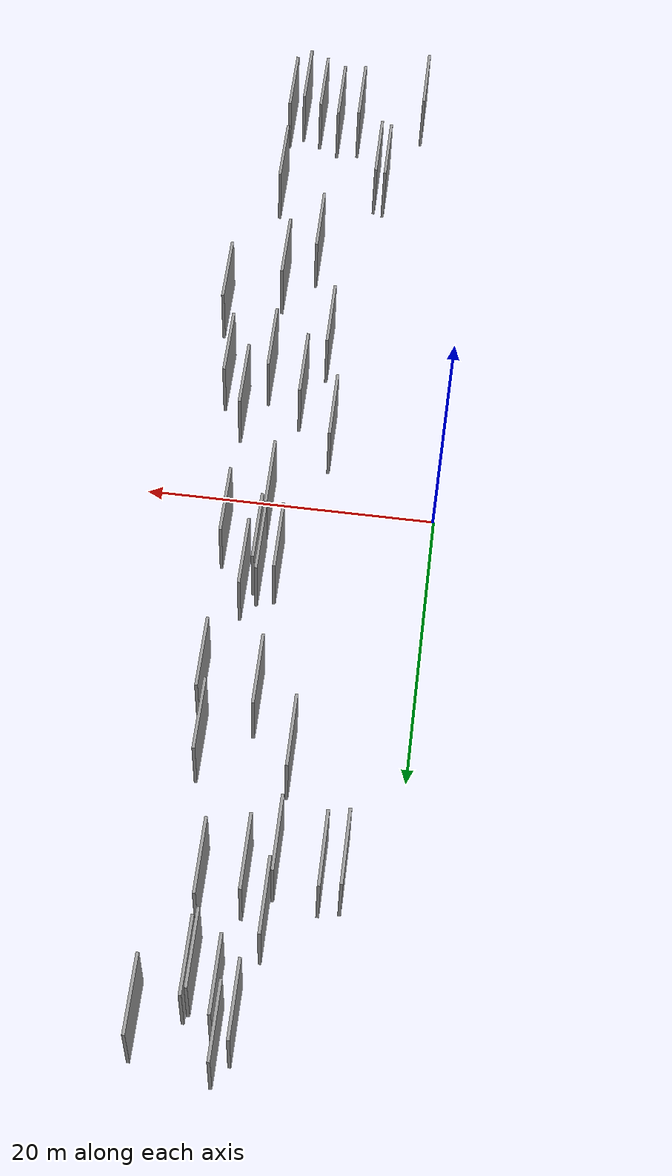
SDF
<sdf version="1.6">
 <world name="default">
  <scene>
   <sky><clouds><speed>12</speed></clouds></sky>
   <ambient>0.4 0.4 0.4 1</ambient>
   <background>0.7 0.7 0.7 1</background>
   <shadows>1</shadows>
  </scene>
  <gravity>0 0 -9.8066</gravity>
  <magnetic_field>6e-06 2.3e-05 -4.2e-05</magnetic_field>
  <physics default="0" name="default_physics" type="ode">
   <ode>
    <solver>
     <type>quick</type>
     <iters>10</iters>
     <sor>1.0</sor>
     <use_dynamic_moi_rescaling>0</use_dynamic_moi_rescaling>
    </solver>
    <constraints>
     <cfm>0</cfm>
     <erp>0.2</erp>
     <contact_max_correcting_vel>100</contact_max_correcting_vel>
     <contact_surface_layer>0.001</contact_surface_layer>
    </constraints>
   </ode>
   <max_step_size>0.004</max_step_size>
   <real_time_factor>1</real_time_factor>
   <real_time_update_rate>250</real_time_update_rate>
  </physics>
  <light name="sun" type="directional">
   <pose>0 0 10 0 0 0</pose>
   <diffuse>0.8 0.8 0.8 1</diffuse>
   <specular>0.2 0.2 0.2 1</specular>
   <attenuation>
    <range>1000</range>
    <constant>0.9</constant>
    <linear>0.01</linear>
    <quadratic>0.001</quadratic>
   </attenuation>
   <direction>-0.5 0.1 -0.9</direction>
  </light>
  <model name="grey_wall_1">
   <static>1</static>
   <pose>10.1466 15.5765 0.0 0.000000 0.000000 1.570796</pose>
   <link name="link">
    <pose>0 0 2.50 0 0 0</pose>
    <collision name="collision"><geometry><box><size>5.00 0.2 5.00</size></box></geometry></collision>
    <visual name="visual">
     <cast_shadows>0</cast_shadows>
     <geometry><box><size>5.00 0.2 5.00</size></box></geometry>
     <material>
      <script>
       <uri>model://grey_wall/materials/scripts</uri>
       <uri>model://grey_wall/materials/textures</uri>
       <name>vrc/grey_wall</name>
      </script>
     </material>
    </visual>
   </link>
  </model>
  <model name="grey_wall_2">
   <static>1</static>
   <pose>11.3341 0.4889 0.0 0.000000 0.000000 1.570796</pose>
   <link name="link">
    <pose>0 0 2.50 0 0 0</pose>
    <collision name="collision"><geometry><box><size>5.00 0.2 5.00</size></box></geometry></collision>
    <visual name="visual">
     <cast_shadows>0</cast_shadows>
     <geometry><box><size>5.00 0.2 5.00</size></box></geometry>
     <material>
      <script>
       <uri>model://grey_wall/materials/scripts</uri>
       <uri>model://grey_wall/materials/textures</uri>
       <name>vrc/grey_wall</name>
      </script>
     </material>
    </visual>
   </link>
  </model>
  <model name="grey_wall_3">
   <static>1</static>
   <pose>13.8696 14.8162 0.0 0.000000 0.000000 1.570796</pose>
   <link name="link">
    <pose>0 0 2.50 0 0 0</pose>
    <collision name="collision"><geometry><box><size>5.00 0.2 5.00</size></box></geometry></collision>
    <visual name="visual">
     <cast_shadows>0</cast_shadows>
     <geometry><box><size>5.00 0.2 5.00</size></box></geometry>
     <material>
      <script>
       <uri>model://grey_wall/materials/scripts</uri>
       <uri>model://grey_wall/materials/textures</uri>
       <name>vrc/grey_wall</name>
      </script>
     </material>
    </visual>
   </link>
  </model>
  <model name="grey_wall_4">
   <static>1</static>
   <pose>7.4729 26.5714 0.0 0.000000 0.000000 1.570796</pose>
   <link name="link">
    <pose>0 0 2.50 0 0 0</pose>
    <collision name="collision"><geometry><box><size>5.00 0.2 5.00</size></box></geometry></collision>
    <visual name="visual">
     <cast_shadows>0</cast_shadows>
     <geometry><box><size>5.00 0.2 5.00</size></box></geometry>
     <material>
      <script>
       <uri>model://grey_wall/materials/scripts</uri>
       <uri>model://grey_wall/materials/textures</uri>
       <name>vrc/grey_wall</name>
      </script>
     </material>
    </visual>
   </link>
  </model>
  <model name="grey_wall_5">
   <static>1</static>
   <pose>12.2515 6.9655 0.0 0.000000 0.000000 1.570796</pose>
   <link name="link">
    <pose>0 0 2.50 0 0 0</pose>
    <collision name="collision"><geometry><box><size>5.00 0.2 5.00</size></box></geometry></collision>
    <visual name="visual">
     <cast_shadows>0</cast_shadows>
     <geometry><box><size>5.00 0.2 5.00</size></box></geometry>
     <material>
      <script>
       <uri>model://grey_wall/materials/scripts</uri>
       <uri>model://grey_wall/materials/textures</uri>
       <name>vrc/grey_wall</name>
      </script>
     </material>
    </visual>
   </link>
  </model>
  <model name="grey_wall_6">
   <static>1</static>
   <pose>3.2671 26.9560 0.0 0.000000 0.000000 1.570796</pose>
   <link name="link">
    <pose>0 0 2.50 0 0 0</pose>
    <collision name="collision"><geometry><box><size>5.00 0.2 5.00</size></box></geometry></collision>
    <visual name="visual">
     <cast_shadows>0</cast_shadows>
     <geometry><box><size>5.00 0.2 5.00</size></box></geometry>
     <material>
      <script>
       <uri>model://grey_wall/materials/scripts</uri>
       <uri>model://grey_wall/materials/textures</uri>
       <name>vrc/grey_wall</name>
      </script>
     </material>
    </visual>
   </link>
  </model>
  <model name="grey_wall_7">
   <static>1</static>
   <pose>4.5960 27.2336 0.0 0.000000 0.000000 1.570796</pose>
   <link name="link">
    <pose>0 0 2.50 0 0 0</pose>
    <collision name="collision"><geometry><box><size>5.00 0.2 5.00</size></box></geometry></collision>
    <visual name="visual">
     <cast_shadows>0</cast_shadows>
     <geometry><box><size>5.00 0.2 5.00</size></box></geometry>
     <material>
      <script>
       <uri>model://grey_wall/materials/scripts</uri>
       <uri>model://grey_wall/materials/textures</uri>
       <name>vrc/grey_wall</name>
      </script>
     </material>
    </visual>
   </link>
  </model>
  <model name="grey_wall_8">
   <static>1</static>
   <pose>7.7250 -5.6451 0.0 0.000000 0.000000 1.570796</pose>
   <link name="link">
    <pose>0 0 2.50 0 0 0</pose>
    <collision name="collision"><geometry><box><size>5.00 0.2 5.00</size></box></geometry></collision>
    <visual name="visual">
     <cast_shadows>0</cast_shadows>
     <geometry><box><size>5.00 0.2 5.00</size></box></geometry>
     <material>
      <script>
       <uri>model://grey_wall/materials/scripts</uri>
       <uri>model://grey_wall/materials/textures</uri>
       <name>vrc/grey_wall</name>
      </script>
     </material>
    </visual>
   </link>
  </model>
  <model name="grey_wall_9">
   <static>1</static>
   <pose>14.1129 -28.6746 0.0 0.000000 0.000000 1.570796</pose>
   <link name="link">
    <pose>0 0 2.50 0 0 0</pose>
    <collision name="collision"><geometry><box><size>5.00 0.2 5.00</size></box></geometry></collision>
    <visual name="visual">
     <cast_shadows>0</cast_shadows>
     <geometry><box><size>5.00 0.2 5.00</size></box></geometry>
     <material>
      <script>
       <uri>model://grey_wall/materials/scripts</uri>
       <uri>model://grey_wall/materials/textures</uri>
       <name>vrc/grey_wall</name>
      </script>
     </material>
    </visual>
   </link>
  </model>
  <model name="grey_wall_10">
   <static>1</static>
   <pose>11.5134 34.4503 0.0 0.000000 0.000000 1.570796</pose>
   <link name="link">
    <pose>0 0 2.50 0 0 0</pose>
    <collision name="collision"><geometry><box><size>5.00 0.2 5.00</size></box></geometry></collision>
    <visual name="visual">
     <cast_shadows>0</cast_shadows>
     <geometry><box><size>5.00 0.2 5.00</size></box></geometry>
     <material>
      <script>
       <uri>model://grey_wall/materials/scripts</uri>
       <uri>model://grey_wall/materials/textures</uri>
       <name>vrc/grey_wall</name>
      </script>
     </material>
    </visual>
   </link>
  </model>
  <model name="grey_wall_11">
   <static>1</static>
   <pose>11.9102 -36.1783 0.0 0.000000 0.000000 1.570796</pose>
   <link name="link">
    <pose>0 0 2.50 0 0 0</pose>
    <collision name="collision"><geometry><box><size>5.00 0.2 5.00</size></box></geometry></collision>
    <visual name="visual">
     <cast_shadows>0</cast_shadows>
     <geometry><box><size>5.00 0.2 5.00</size></box></geometry>
     <material>
      <script>
       <uri>model://grey_wall/materials/scripts</uri>
       <uri>model://grey_wall/materials/textures</uri>
       <name>vrc/grey_wall</name>
      </script>
     </material>
    </visual>
   </link>
  </model>
  <model name="grey_wall_12">
   <static>1</static>
   <pose>12.7768 -19.4312 0.0 0.000000 0.000000 1.570796</pose>
   <link name="link">
    <pose>0 0 2.50 0 0 0</pose>
    <collision name="collision"><geometry><box><size>5.00 0.2 5.00</size></box></geometry></collision>
    <visual name="visual">
     <cast_shadows>0</cast_shadows>
     <geometry><box><size>5.00 0.2 5.00</size></box></geometry>
     <material>
      <script>
       <uri>model://grey_wall/materials/scripts</uri>
       <uri>model://grey_wall/materials/textures</uri>
       <name>vrc/grey_wall</name>
      </script>
     </material>
    </visual>
   </link>
  </model>
  <model name="grey_wall_13">
   <static>1</static>
   <pose>12.6726 -10.9456 0.0 0.000000 0.000000 1.570796</pose>
   <link name="link">
    <pose>0 0 2.50 0 0 0</pose>
    <collision name="collision"><geometry><box><size>5.00 0.2 5.00</size></box></geometry></collision>
    <visual name="visual">
     <cast_shadows>0</cast_shadows>
     <geometry><box><size>5.00 0.2 5.00</size></box></geometry>
     <material>
      <script>
       <uri>model://grey_wall/materials/scripts</uri>
       <uri>model://grey_wall/materials/textures</uri>
       <name>vrc/grey_wall</name>
      </script>
     </material>
    </visual>
   </link>
  </model>
  <model name="grey_wall_14">
   <static>1</static>
   <pose>10.5864 -22.2286 0.0 0.000000 0.000000 1.570796</pose>
   <link name="link">
    <pose>0 0 2.50 0 0 0</pose>
    <collision name="collision"><geometry><box><size>5.00 0.2 5.00</size></box></geometry></collision>
    <visual name="visual">
     <cast_shadows>0</cast_shadows>
     <geometry><box><size>5.00 0.2 5.00</size></box></geometry>
     <material>
      <script>
       <uri>model://grey_wall/materials/scripts</uri>
       <uri>model://grey_wall/materials/textures</uri>
       <name>vrc/grey_wall</name>
      </script>
     </material>
    </visual>
   </link>
  </model>
  <model name="grey_wall_15">
   <static>1</static>
   <pose>15.6768 -10.1167 0.0 0.000000 0.000000 1.570796</pose>
   <link name="link">
    <pose>0 0 2.50 0 0 0</pose>
    <collision name="collision"><geometry><box><size>5.00 0.2 5.00</size></box></geometry></collision>
    <visual name="visual">
     <cast_shadows>0</cast_shadows>
     <geometry><box><size>5.00 0.2 5.00</size></box></geometry>
     <material>
      <script>
       <uri>model://grey_wall/materials/scripts</uri>
       <uri>model://grey_wall/materials/textures</uri>
       <name>vrc/grey_wall</name>
      </script>
     </material>
    </visual>
   </link>
  </model>
  <model name="grey_wall_16">
   <static>1</static>
   <pose>4.1034 -37.5256 0.0 0.000000 0.000000 1.570796</pose>
   <link name="link">
    <pose>0 0 2.50 0 0 0</pose>
    <collision name="collision"><geometry><box><size>5.00 0.2 5.00</size></box></geometry></collision>
    <visual name="visual">
     <cast_shadows>0</cast_shadows>
     <geometry><box><size>5.00 0.2 5.00</size></box></geometry>
     <material>
      <script>
       <uri>model://grey_wall/materials/scripts</uri>
       <uri>model://grey_wall/materials/textures</uri>
       <name>vrc/grey_wall</name>
      </script>
     </material>
    </visual>
   </link>
  </model>
  <model name="grey_wall_17">
   <static>1</static>
   <pose>11.7766 34.9597 0.0 0.000000 0.000000 1.570796</pose>
   <link name="link">
    <pose>0 0 2.50 0 0 0</pose>
    <collision name="collision"><geometry><box><size>5.00 0.2 5.00</size></box></geometry></collision>
    <visual name="visual">
     <cast_shadows>0</cast_shadows>
     <geometry><box><size>5.00 0.2 5.00</size></box></geometry>
     <material>
      <script>
       <uri>model://grey_wall/materials/scripts</uri>
       <uri>model://grey_wall/materials/textures</uri>
       <name>vrc/grey_wall</name>
      </script>
     </material>
    </visual>
   </link>
  </model>
  <model name="grey_wall_18">
   <static>1</static>
   <pose>7.4791 19.6140 0.0 0.000000 0.000000 1.570796</pose>
   <link name="link">
    <pose>0 0 2.50 0 0 0</pose>
    <collision name="collision"><geometry><box><size>5.00 0.2 5.00</size></box></geometry></collision>
    <visual name="visual">
     <cast_shadows>0</cast_shadows>
     <geometry><box><size>5.00 0.2 5.00</size></box></geometry>
     <material>
      <script>
       <uri>model://grey_wall/materials/scripts</uri>
       <uri>model://grey_wall/materials/textures</uri>
       <name>vrc/grey_wall</name>
      </script>
     </material>
    </visual>
   </link>
  </model>
  <model name="grey_wall_19">
   <static>1</static>
   <pose>7.0450 -30.0517 0.0 0.000000 0.000000 1.570796</pose>
   <link name="link">
    <pose>0 0 2.50 0 0 0</pose>
    <collision name="collision"><geometry><box><size>5.00 0.2 5.00</size></box></geometry></collision>
    <visual name="visual">
     <cast_shadows>0</cast_shadows>
     <geometry><box><size>5.00 0.2 5.00</size></box></geometry>
     <material>
      <script>
       <uri>model://grey_wall/materials/scripts</uri>
       <uri>model://grey_wall/materials/textures</uri>
       <name>vrc/grey_wall</name>
      </script>
     </material>
    </visual>
   </link>
  </model>
  <model name="grey_wall_20">
   <static>1</static>
   <pose>10.1971 -8.9991 0.0 0.000000 0.000000 1.570796</pose>
   <link name="link">
    <pose>0 0 2.50 0 0 0</pose>
    <collision name="collision"><geometry><box><size>5.00 0.2 5.00</size></box></geometry></collision>
    <visual name="visual">
     <cast_shadows>0</cast_shadows>
     <geometry><box><size>5.00 0.2 5.00</size></box></geometry>
     <material>
      <script>
       <uri>model://grey_wall/materials/scripts</uri>
       <uri>model://grey_wall/materials/textures</uri>
       <name>vrc/grey_wall</name>
      </script>
     </material>
    </visual>
   </link>
  </model>
  <model name="grey_wall_21">
   <static>1</static>
   <pose>16.7005 -16.6546 0.0 0.000000 0.000000 1.570796</pose>
   <link name="link">
    <pose>0 0 2.50 0 0 0</pose>
    <collision name="collision"><geometry><box><size>5.00 0.2 5.00</size></box></geometry></collision>
    <visual name="visual">
     <cast_shadows>0</cast_shadows>
     <geometry><box><size>5.00 0.2 5.00</size></box></geometry>
     <material>
      <script>
       <uri>model://grey_wall/materials/scripts</uri>
       <uri>model://grey_wall/materials/textures</uri>
       <name>vrc/grey_wall</name>
      </script>
     </material>
    </visual>
   </link>
  </model>
  <model name="grey_wall_22">
   <static>1</static>
   <pose>11.2928 5.7085 0.0 0.000000 0.000000 1.570796</pose>
   <link name="link">
    <pose>0 0 2.50 0 0 0</pose>
    <collision name="collision"><geometry><box><size>5.00 0.2 5.00</size></box></geometry></collision>
    <visual name="visual">
     <cast_shadows>0</cast_shadows>
     <geometry><box><size>5.00 0.2 5.00</size></box></geometry>
     <material>
      <script>
       <uri>model://grey_wall/materials/scripts</uri>
       <uri>model://grey_wall/materials/textures</uri>
       <name>vrc/grey_wall</name>
      </script>
     </material>
    </visual>
   </link>
  </model>
  <model name="grey_wall_23">
   <static>1</static>
   <pose>11.6220 4.8731 0.0 0.000000 0.000000 1.570796</pose>
   <link name="link">
    <pose>0 0 2.50 0 0 0</pose>
    <collision name="collision"><geometry><box><size>5.00 0.2 5.00</size></box></geometry></collision>
    <visual name="visual">
     <cast_shadows>0</cast_shadows>
     <geometry><box><size>5.00 0.2 5.00</size></box></geometry>
     <material>
      <script>
       <uri>model://grey_wall/materials/scripts</uri>
       <uri>model://grey_wall/materials/textures</uri>
       <name>vrc/grey_wall</name>
      </script>
     </material>
    </visual>
   </link>
  </model>
  <model name="grey_wall_24">
   <static>1</static>
   <pose>13.2622 -36.8241 0.0 0.000000 0.000000 1.570796</pose>
   <link name="link">
    <pose>0 0 2.50 0 0 0</pose>
    <collision name="collision"><geometry><box><size>5.00 0.2 5.00</size></box></geometry></collision>
    <visual name="visual">
     <cast_shadows>0</cast_shadows>
     <geometry><box><size>5.00 0.2 5.00</size></box></geometry>
     <material>
      <script>
       <uri>model://grey_wall/materials/scripts</uri>
       <uri>model://grey_wall/materials/textures</uri>
       <name>vrc/grey_wall</name>
      </script>
     </material>
    </visual>
   </link>
  </model>
  <model name="grey_wall_25">
   <static>1</static>
   <pose>14.2227 -7.4866 0.0 0.000000 0.000000 1.570796</pose>
   <link name="link">
    <pose>0 0 2.50 0 0 0</pose>
    <collision name="collision"><geometry><box><size>5.00 0.2 5.00</size></box></geometry></collision>
    <visual name="visual">
     <cast_shadows>0</cast_shadows>
     <geometry><box><size>5.00 0.2 5.00</size></box></geometry>
     <material>
      <script>
       <uri>model://grey_wall/materials/scripts</uri>
       <uri>model://grey_wall/materials/textures</uri>
       <name>vrc/grey_wall</name>
      </script>
     </material>
    </visual>
   </link>
  </model>
  <model name="grey_wall_26">
   <static>1</static>
   <pose>14.6202 37.6828 0.0 0.000000 0.000000 1.570796</pose>
   <link name="link">
    <pose>0 0 2.50 0 0 0</pose>
    <collision name="collision"><geometry><box><size>5.00 0.2 5.00</size></box></geometry></collision>
    <visual name="visual">
     <cast_shadows>0</cast_shadows>
     <geometry><box><size>5.00 0.2 5.00</size></box></geometry>
     <material>
      <script>
       <uri>model://grey_wall/materials/scripts</uri>
       <uri>model://grey_wall/materials/textures</uri>
       <name>vrc/grey_wall</name>
      </script>
     </material>
    </visual>
   </link>
  </model>
  <model name="grey_wall_27">
   <static>1</static>
   <pose>8.9148 -35.6876 0.0 0.000000 0.000000 1.570796</pose>
   <link name="link">
    <pose>0 0 2.50 0 0 0</pose>
    <collision name="collision"><geometry><box><size>5.00 0.2 5.00</size></box></geometry></collision>
    <visual name="visual">
     <cast_shadows>0</cast_shadows>
     <geometry><box><size>5.00 0.2 5.00</size></box></geometry>
     <material>
      <script>
       <uri>model://grey_wall/materials/scripts</uri>
       <uri>model://grey_wall/materials/textures</uri>
       <name>vrc/grey_wall</name>
      </script>
     </material>
    </visual>
   </link>
  </model>
  <model name="grey_wall_28">
   <static>1</static>
   <pose>10.1235 5.4149 0.0 0.000000 0.000000 1.570796</pose>
   <link name="link">
    <pose>0 0 2.50 0 0 0</pose>
    <collision name="collision"><geometry><box><size>5.00 0.2 5.00</size></box></geometry></collision>
    <visual name="visual">
     <cast_shadows>0</cast_shadows>
     <geometry><box><size>5.00 0.2 5.00</size></box></geometry>
     <material>
      <script>
       <uri>model://grey_wall/materials/scripts</uri>
       <uri>model://grey_wall/materials/textures</uri>
       <name>vrc/grey_wall</name>
      </script>
     </material>
    </visual>
   </link>
  </model>
  <model name="grey_wall_29">
   <static>1</static>
   <pose>7.7133 30.6684 0.0 0.000000 0.000000 1.570796</pose>
   <link name="link">
    <pose>0 0 2.50 0 0 0</pose>
    <collision name="collision"><geometry><box><size>5.00 0.2 5.00</size></box></geometry></collision>
    <visual name="visual">
     <cast_shadows>0</cast_shadows>
     <geometry><box><size>5.00 0.2 5.00</size></box></geometry>
     <material>
      <script>
       <uri>model://grey_wall/materials/scripts</uri>
       <uri>model://grey_wall/materials/textures</uri>
       <name>vrc/grey_wall</name>
      </script>
     </material>
    </visual>
   </link>
  </model>
  <model name="grey_wall_30">
   <static>1</static>
   <pose>14.2670 -35.9809 0.0 0.000000 0.000000 1.570796</pose>
   <link name="link">
    <pose>0 0 2.50 0 0 0</pose>
    <collision name="collision"><geometry><box><size>5.00 0.2 5.00</size></box></geometry></collision>
    <visual name="visual">
     <cast_shadows>0</cast_shadows>
     <geometry><box><size>5.00 0.2 5.00</size></box></geometry>
     <material>
      <script>
       <uri>model://grey_wall/materials/scripts</uri>
       <uri>model://grey_wall/materials/textures</uri>
       <name>vrc/grey_wall</name>
      </script>
     </material>
    </visual>
   </link>
  </model>
  <model name="grey_wall_31">
   <static>1</static>
   <pose>8.6351 37.2153 0.0 0.000000 0.000000 1.570796</pose>
   <link name="link">
    <pose>0 0 2.50 0 0 0</pose>
    <collision name="collision"><geometry><box><size>5.00 0.2 5.00</size></box></geometry></collision>
    <visual name="visual">
     <cast_shadows>0</cast_shadows>
     <geometry><box><size>5.00 0.2 5.00</size></box></geometry>
     <material>
      <script>
       <uri>model://grey_wall/materials/scripts</uri>
       <uri>model://grey_wall/materials/textures</uri>
       <name>vrc/grey_wall</name>
      </script>
     </material>
    </visual>
   </link>
  </model>
  <model name="grey_wall_32">
   <static>1</static>
   <pose>8.8013 -13.5581 0.0 0.000000 0.000000 1.570796</pose>
   <link name="link">
    <pose>0 0 2.50 0 0 0</pose>
    <collision name="collision"><geometry><box><size>5.00 0.2 5.00</size></box></geometry></collision>
    <visual name="visual">
     <cast_shadows>0</cast_shadows>
     <geometry><box><size>5.00 0.2 5.00</size></box></geometry>
     <material>
      <script>
       <uri>model://grey_wall/materials/scripts</uri>
       <uri>model://grey_wall/materials/textures</uri>
       <name>vrc/grey_wall</name>
      </script>
     </material>
    </visual>
   </link>
  </model>
  <model name="grey_wall_33">
   <static>1</static>
   <pose>11.9092 28.6420 0.0 0.000000 0.000000 1.570796</pose>
   <link name="link">
    <pose>0 0 2.50 0 0 0</pose>
    <collision name="collision"><geometry><box><size>5.00 0.2 5.00</size></box></geometry></collision>
    <visual name="visual">
     <cast_shadows>0</cast_shadows>
     <geometry><box><size>5.00 0.2 5.00</size></box></geometry>
     <material>
      <script>
       <uri>model://grey_wall/materials/scripts</uri>
       <uri>model://grey_wall/materials/textures</uri>
       <name>vrc/grey_wall</name>
      </script>
     </material>
    </visual>
   </link>
  </model>
  <model name="grey_wall_34">
   <static>1</static>
   <pose>14.0360 3.0728 0.0 0.000000 0.000000 1.570796</pose>
   <link name="link">
    <pose>0 0 2.50 0 0 0</pose>
    <collision name="collision"><geometry><box><size>5.00 0.2 5.00</size></box></geometry></collision>
    <visual name="visual">
     <cast_shadows>0</cast_shadows>
     <geometry><box><size>5.00 0.2 5.00</size></box></geometry>
     <material>
      <script>
       <uri>model://grey_wall/materials/scripts</uri>
       <uri>model://grey_wall/materials/textures</uri>
       <name>vrc/grey_wall</name>
      </script>
     </material>
    </visual>
   </link>
  </model>
  <model name="grey_wall_35">
   <static>1</static>
   <pose>13.3834 19.1776 0.0 0.000000 0.000000 1.570796</pose>
   <link name="link">
    <pose>0 0 2.50 0 0 0</pose>
    <collision name="collision"><geometry><box><size>5.00 0.2 5.00</size></box></geometry></collision>
    <visual name="visual">
     <cast_shadows>0</cast_shadows>
     <geometry><box><size>5.00 0.2 5.00</size></box></geometry>
     <material>
      <script>
       <uri>model://grey_wall/materials/scripts</uri>
       <uri>model://grey_wall/materials/textures</uri>
       <name>vrc/grey_wall</name>
      </script>
     </material>
    </visual>
   </link>
  </model>
  <model name="grey_wall_36">
   <static>1</static>
   <pose>9.2271 28.0328 0.0 0.000000 0.000000 1.570796</pose>
   <link name="link">
    <pose>0 0 2.50 0 0 0</pose>
    <collision name="collision"><geometry><box><size>5.00 0.2 5.00</size></box></geometry></collision>
    <visual name="visual">
     <cast_shadows>0</cast_shadows>
     <geometry><box><size>5.00 0.2 5.00</size></box></geometry>
     <material>
      <script>
       <uri>model://grey_wall/materials/scripts</uri>
       <uri>model://grey_wall/materials/textures</uri>
       <name>vrc/grey_wall</name>
      </script>
     </material>
    </visual>
   </link>
  </model>
  <model name="grey_wall_37">
   <static>1</static>
   <pose>9.9235 35.8526 0.0 0.000000 0.000000 1.570796</pose>
   <link name="link">
    <pose>0 0 2.50 0 0 0</pose>
    <collision name="collision"><geometry><box><size>5.00 0.2 5.00</size></box></geometry></collision>
    <visual name="visual">
     <cast_shadows>0</cast_shadows>
     <geometry><box><size>5.00 0.2 5.00</size></box></geometry>
     <material>
      <script>
       <uri>model://grey_wall/materials/scripts</uri>
       <uri>model://grey_wall/materials/textures</uri>
       <name>vrc/grey_wall</name>
      </script>
     </material>
    </visual>
   </link>
  </model>
  <model name="grey_wall_38">
   <static>1</static>
   <pose>6.3288 -29.7821 0.0 0.000000 0.000000 1.570796</pose>
   <link name="link">
    <pose>0 0 2.50 0 0 0</pose>
    <collision name="collision"><geometry><box><size>5.00 0.2 5.00</size></box></geometry></collision>
    <visual name="visual">
     <cast_shadows>0</cast_shadows>
     <geometry><box><size>5.00 0.2 5.00</size></box></geometry>
     <material>
      <script>
       <uri>model://grey_wall/materials/scripts</uri>
       <uri>model://grey_wall/materials/textures</uri>
       <name>vrc/grey_wall</name>
      </script>
     </material>
    </visual>
   </link>
  </model>
  <model name="grey_wall_39">
   <static>1</static>
   <pose>10.4777 -35.4643 0.0 0.000000 0.000000 1.570796</pose>
   <link name="link">
    <pose>0 0 2.50 0 0 0</pose>
    <collision name="collision"><geometry><box><size>5.00 0.2 5.00</size></box></geometry></collision>
    <visual name="visual">
     <cast_shadows>0</cast_shadows>
     <geometry><box><size>5.00 0.2 5.00</size></box></geometry>
     <material>
      <script>
       <uri>model://grey_wall/materials/scripts</uri>
       <uri>model://grey_wall/materials/textures</uri>
       <name>vrc/grey_wall</name>
      </script>
     </material>
    </visual>
   </link>
  </model>
  <model name="grey_wall_40">
   <static>1</static>
   <pose>9.5600 38.6150 0.0 0.000000 0.000000 1.570796</pose>
   <link name="link">
    <pose>0 0 2.50 0 0 0</pose>
    <collision name="collision"><geometry><box><size>5.00 0.2 5.00</size></box></geometry></collision>
    <visual name="visual">
     <cast_shadows>0</cast_shadows>
     <geometry><box><size>5.00 0.2 5.00</size></box></geometry>
     <material>
      <script>
       <uri>model://grey_wall/materials/scripts</uri>
       <uri>model://grey_wall/materials/textures</uri>
       <name>vrc/grey_wall</name>
      </script>
     </material>
    </visual>
   </link>
  </model>
 </world>
</sdf>
